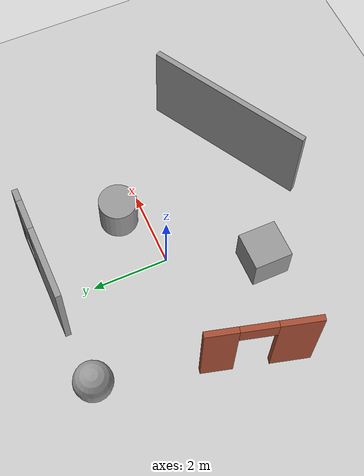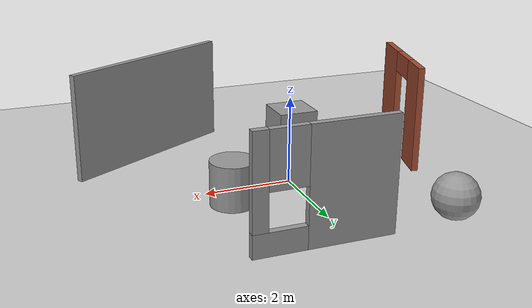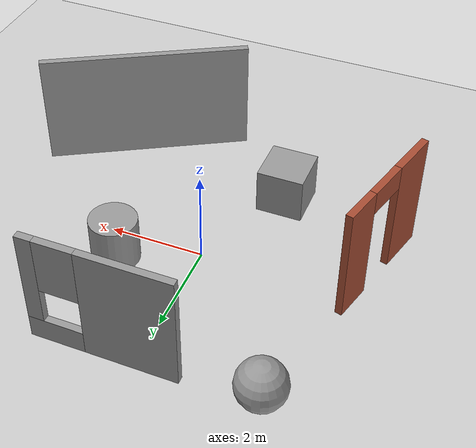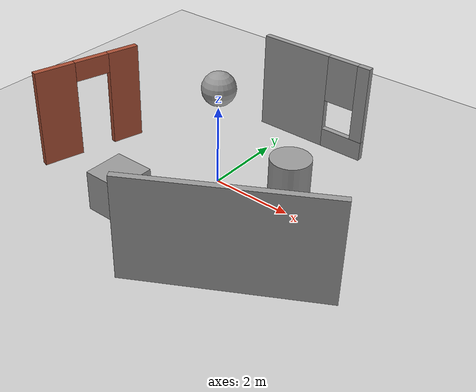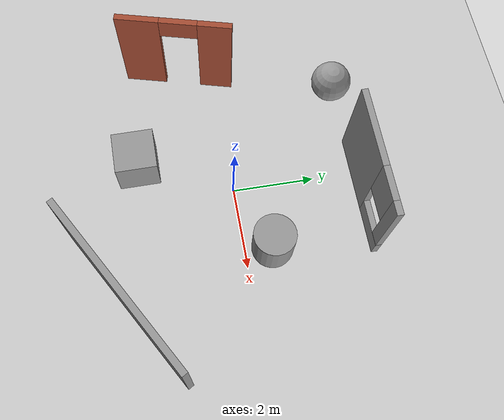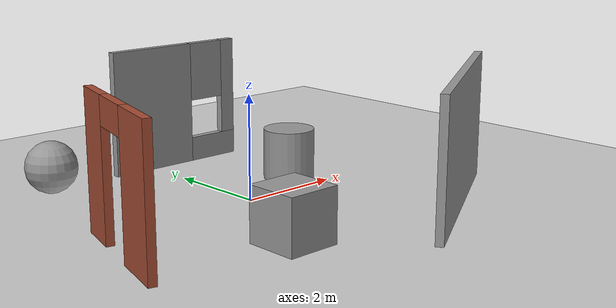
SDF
<sdf version="1.7">
 <world name="default">
  <light name="sun" type="directional">
   <pose>0 0 10 0 -0 0</pose>
   <diffuse>0.8 0.8 0.8 1</diffuse>
   <specular>0.2 0.2 0.2 1</specular>
   <attenuation>
    <range>1000</range>
    <constant>0.9</constant>
    <linear>0.01</linear>
    <quadratic>0.001</quadratic>
   </attenuation>
   <direction>-0.5 0.1 -0.9</direction>
   <spot><inner_angle>0</inner_angle><outer_angle>0</outer_angle><falloff>0</falloff></spot>
  </light>
  <model name="ground_plane">
   <static>1</static>
   <link name="link">
    <collision name="collision">
     <geometry><plane><normal>0 0 1</normal><size>100 100</size></plane></geometry>
     <surface>
      <contact><collide_bitmask>65535</collide_bitmask></contact>
      <friction><ode><mu>100</mu><mu2>50</mu2></ode></friction>
     </surface>
    </collision>
    <visual name="visual">
     <cast_shadows>0</cast_shadows>
     <geometry><plane><normal>0 0 1</normal><size>100 100</size></plane></geometry>
     <material>
      <script><uri>file://media/materials/scripts/gazebo.material</uri><name>Gazebo/Grey</name></script>
     </material>
    </visual>
   </link>
  </model>
  <gravity>0 0 -9.8</gravity>
  <magnetic_field>6e-06 2.3e-05 -4.2e-05</magnetic_field>
  <atmosphere type="adiabatic"/>
  <physics type="ode">
   <max_step_size>0.001</max_step_size>
   <real_time_factor>1</real_time_factor>
   <real_time_update_rate>1000</real_time_update_rate>
  </physics>
  <scene><ambient>0.4 0.4 0.4 1</ambient><background>0.7 0.7 0.7 1</background><shadows>1</shadows></scene>
  <audio><device>default</device></audio>
  <spherical_coordinates>
   <surface_model>EARTH_WGS84</surface_model>
   <latitude_deg>0</latitude_deg>
   <longitude_deg>0</longitude_deg>
   <elevation>0</elevation>
   <heading_deg>0</heading_deg>
  </spherical_coordinates>
  <model name="testing">
   <link name="link_0">
    <inertial>
     <mass>1</mass>
     <inertia><ixx>0.145833</ixx><ixy>0</ixy><ixz>0</ixz><iyy>0.145833</iyy><iyz>0</iyz><izz>0.125</izz></inertia>
    </inertial>
    <pose>1.96455 0.438623 0.125 0 -0 0</pose>
    <visual name="visual">
     <geometry><cylinder><radius>0.5</radius><length>1</length></cylinder></geometry>
     <material>
      <lighting>1</lighting>
      <script><uri>file://media/materials/scripts/gazebo.material</uri><name>Gazebo/Grey</name></script>
      <shader type="pixel"/>
     </material>
    </visual>
    <collision name="collision">
     <geometry><cylinder><radius>0.5</radius><length>1</length></cylinder></geometry>
     <surface>
      <friction>
       <ode><mu>1</mu><mu2>1</mu2><fdir1>0 0 0</fdir1><slip1>0</slip1><slip2>0</slip2></ode>
       <torsional>
        <coefficient>1</coefficient>
        <patch_radius>0</patch_radius>
        <surface_radius>0</surface_radius>
        <use_patch_radius>1</use_patch_radius>
        <ode><slip>0</slip></ode>
       </torsional>
      </friction>
      <bounce><restitution_coefficient>0</restitution_coefficient><threshold>1e+06</threshold></bounce>
      <contact>
       <collide_without_contact>0</collide_without_contact>
       <collide_without_contact_bitmask>1</collide_without_contact_bitmask>
       <collide_bitmask>1</collide_bitmask>
       <ode>
        <soft_cfm>0</soft_cfm>
        <soft_erp>0.2</soft_erp>
        <kp>1e+13</kp>
        <kd>1</kd>
        <max_vel>0.01</max_vel>
        <min_depth>0</min_depth>
       </ode>
       <bullet>
        <split_impulse>1</split_impulse>
        <split_impulse_penetration_threshold>-0.01</split_impulse_penetration_threshold>
        <soft_cfm>0</soft_cfm>
        <soft_erp>0.2</soft_erp>
        <kp>1e+13</kp>
        <kd>1</kd>
       </bullet>
      </contact>
     </surface>
    </collision>
   </link>
   <link name="link_1">
    <inertial>
     <mass>1</mass>
     <inertia>
      <ixx>0.166667</ixx>
      <ixy>0</ixy>
      <ixz>0</ixz>
      <iyy>0.166667</iyy>
      <iyz>0</iyz>
      <izz>0.166667</izz>
     </inertia>
    </inertial>
    <pose>-0.650152 -2.47363 0.125 0 -0 0</pose>
    <visual name="visual">
     <geometry><box><size>1 1 1</size></box></geometry>
     <material>
      <lighting>1</lighting>
      <script><uri>file://media/materials/scripts/gazebo.material</uri><name>Gazebo/Grey</name></script>
      <shader type="pixel"/>
     </material>
    </visual>
    <collision name="collision">
     <geometry><box><size>1 1 1</size></box></geometry>
     <surface>
      <friction>
       <ode><mu>1</mu><mu2>1</mu2><fdir1>0 0 0</fdir1><slip1>0</slip1><slip2>0</slip2></ode>
       <torsional>
        <coefficient>1</coefficient>
        <patch_radius>0</patch_radius>
        <surface_radius>0</surface_radius>
        <use_patch_radius>1</use_patch_radius>
        <ode><slip>0</slip></ode>
       </torsional>
      </friction>
      <bounce><restitution_coefficient>0</restitution_coefficient><threshold>1e+06</threshold></bounce>
      <contact>
       <collide_without_contact>0</collide_without_contact>
       <collide_without_contact_bitmask>1</collide_without_contact_bitmask>
       <collide_bitmask>1</collide_bitmask>
       <ode>
        <soft_cfm>0</soft_cfm>
        <soft_erp>0.2</soft_erp>
        <kp>1e+13</kp>
        <kd>1</kd>
        <max_vel>0.01</max_vel>
        <min_depth>0</min_depth>
       </ode>
       <bullet>
        <split_impulse>1</split_impulse>
        <split_impulse_penetration_threshold>-0.01</split_impulse_penetration_threshold>
        <soft_cfm>0</soft_cfm>
        <soft_erp>0.2</soft_erp>
        <kp>1e+13</kp>
        <kd>1</kd>
       </bullet>
      </contact>
     </surface>
    </collision>
   </link>
   <link name="link_2">
    <inertial>
     <mass>1</mass>
     <inertia><ixx>0.1</ixx><ixy>0</ixy><ixz>0</ixz><iyy>0.1</iyy><iyz>0</iyz><izz>0.1</izz></inertia>
    </inertial>
    <pose>-2.03162 2.71558 0.125 0 -0 0</pose>
    <visual name="visual">
     <geometry><sphere><radius>0.5</radius></sphere></geometry>
     <material>
      <lighting>1</lighting>
      <script><uri>file://media/materials/scripts/gazebo.material</uri><name>Gazebo/Grey</name></script>
      <shader type="pixel"/>
     </material>
    </visual>
    <collision name="collision">
     <geometry><sphere><radius>0.5</radius></sphere></geometry>
     <surface>
      <friction>
       <ode><mu>1</mu><mu2>1</mu2><fdir1>0 0 0</fdir1><slip1>0</slip1><slip2>0</slip2></ode>
       <torsional>
        <coefficient>1</coefficient>
        <patch_radius>0</patch_radius>
        <surface_radius>0</surface_radius>
        <use_patch_radius>1</use_patch_radius>
        <ode><slip>0</slip></ode>
       </torsional>
      </friction>
      <bounce><restitution_coefficient>0</restitution_coefficient><threshold>1e+06</threshold></bounce>
      <contact>
       <collide_without_contact>0</collide_without_contact>
       <collide_without_contact_bitmask>1</collide_without_contact_bitmask>
       <collide_bitmask>1</collide_bitmask>
       <ode>
        <soft_cfm>0</soft_cfm>
        <soft_erp>0.2</soft_erp>
        <kp>1e+13</kp>
        <kd>1</kd>
        <max_vel>0.01</max_vel>
        <min_depth>0</min_depth>
       </ode>
       <bullet>
        <split_impulse>1</split_impulse>
        <split_impulse_penetration_threshold>-0.01</split_impulse_penetration_threshold>
        <soft_cfm>0</soft_cfm>
        <soft_erp>0.2</soft_erp>
        <kp>1e+13</kp>
        <kd>1</kd>
       </bullet>
      </contact>
     </surface>
    </collision>
   </link>
   <model name="Untitled">
    <pose>0.717225 -0.680573 -0.375 0 -0 0</pose>
    <link name="Wall_0">
     <pose>-3.73736 -0.418557 0 0 -0 -1.8326</pose>
     <visual name="Wall_0_Visual_0">
      <pose>-0.967875 0 1.25 0 -0 0</pose>
      <geometry><box><size>0.81425 0.15 2.5</size></box></geometry>
      <material>
       <script><uri>file://media/materials/scripts/gazebo.material</uri><name>Gazebo/Bricks</name></script>
       <ambient>1 1 1 1</ambient>
      </material>
      <meta><layer>0</layer></meta>
     </visual>
     <collision name="Wall_0_Collision_0">
      <geometry><box><size>0.81425 0.15 2.5</size></box></geometry>
      <pose>-0.967875 0 1.25 0 -0 0</pose>
     </collision>
     <visual name="Wall_0_Visual_1">
      <pose>0.857125 0 1.25 0 -0 0</pose>
      <geometry><box><size>1.03575 0.15 2.5</size></box></geometry>
      <material>
       <script><uri>file://media/materials/scripts/gazebo.material</uri><name>Gazebo/Bricks</name></script>
       <ambient>1 1 1 1</ambient>
      </material>
      <meta><layer>0</layer></meta>
     </visual>
     <collision name="Wall_0_Collision_1">
      <geometry><box><size>1.03575 0.15 2.5</size></box></geometry>
      <pose>0.857125 0 1.25 0 -0 0</pose>
     </collision>
     <visual name="Wall_0_Visual_2">
      <pose>-0.11075 0 2.25 0 -0 0</pose>
      <geometry><box><size>0.9 0.15 0.5</size></box></geometry>
      <material>
       <script><uri>file://media/materials/scripts/gazebo.material</uri><name>Gazebo/Bricks</name></script>
       <ambient>1 1 1 1</ambient>
      </material>
      <meta><layer>0</layer></meta>
     </visual>
     <collision name="Wall_0_Collision_2">
      <geometry><box><size>0.9 0.15 0.5</size></box></geometry>
      <pose>-0.11075 0 2.25 0 -0 0</pose>
     </collision>
    </link>
    <link name="Wall_2">
     <pose>0.239825 3.50166 0 0 -0 0</pose>
     <visual name="Wall_2_Visual_0">
      <pose>-0.563997 0 1.25 0 -0 0</pose>
      <geometry><box><size>1.87201 0.15 2.5</size></box></geometry>
      <material>
       <script><uri>file://media/materials/scripts/gazebo.material</uri><name>Gazebo/Grey</name></script>
       <ambient>1 1 1 1</ambient>
      </material>
      <meta><layer>0</layer></meta>
     </visual>
     <collision name="Wall_2_Collision_0">
      <geometry><box><size>1.87201 0.15 2.5</size></box></geometry>
      <pose>-0.563997 0 1.25 0 -0 0</pose>
     </collision>
     <visual name="Wall_2_Visual_1">
      <pose>0.936003 0 0.25 0 -0 0</pose>
      <geometry><box><size>1.12799 0.15 0.5</size></box></geometry>
      <material>
       <script><uri>file://media/materials/scripts/gazebo.material</uri><name>Gazebo/Grey</name></script>
       <ambient>1 1 1 1</ambient>
      </material>
      <meta><layer>0</layer></meta>
     </visual>
     <collision name="Wall_2_Collision_1">
      <geometry><box><size>1.12799 0.15 0.5</size></box></geometry>
      <pose>0.936003 0 0.25 0 -0 0</pose>
     </collision>
     <visual name="Wall_2_Visual_2">
      <pose>1.336 0 1.5 0 -0 0</pose>
      <geometry><box><size>0.327993 0.15 2</size></box></geometry>
      <material>
       <script><uri>file://media/materials/scripts/gazebo.material</uri><name>Gazebo/Grey</name></script>
       <ambient>1 1 1 1</ambient>
      </material>
      <meta><layer>0</layer></meta>
     </visual>
     <collision name="Wall_2_Collision_2">
      <geometry><box><size>0.327993 0.15 2</size></box></geometry>
      <pose>1.336 0 1.5 0 -0 0</pose>
     </collision>
     <visual name="Wall_2_Visual_3">
      <pose>0.772007 0 1.9 0 -0 0</pose>
      <geometry><box><size>0.8 0.15 1.2</size></box></geometry>
      <material>
       <script><uri>file://media/materials/scripts/gazebo.material</uri><name>Gazebo/Grey</name></script>
       <ambient>1 1 1 1</ambient>
      </material>
      <meta><layer>0</layer></meta>
     </visual>
     <collision name="Wall_2_Collision_3">
      <geometry><box><size>0.8 0.15 1.2</size></box></geometry>
      <pose>0.772007 0 1.9 0 -0 0</pose>
     </collision>
    </link>
    <link name="Wall_4">
     <collision name="Wall_4_Collision">
      <geometry><box><size>4.5 0.15 2.5</size></box></geometry>
      <pose>0 0 1.25 0 -0 0</pose>
     </collision>
     <visual name="Wall_4_Visual">
      <pose>0 0 1.25 0 -0 0</pose>
      <geometry><box><size>4.5 0.15 2.5</size></box></geometry>
      <material>
       <script><uri>file://media/materials/scripts/gazebo.material</uri><name>Gazebo/Grey</name></script>
       <ambient>1 1 1 1</ambient>
      </material>
      <meta><layer>0</layer></meta>
     </visual>
     <pose>2.17962 -2.38671 0 0 -0 -2.61799</pose>
    </link>
    <static>1</static>
   </model>
   <static>0</static>
   <pose>-0.368272 0.22854 0.374991 0 -0 0</pose>
  </model>
 </world>
</sdf>
